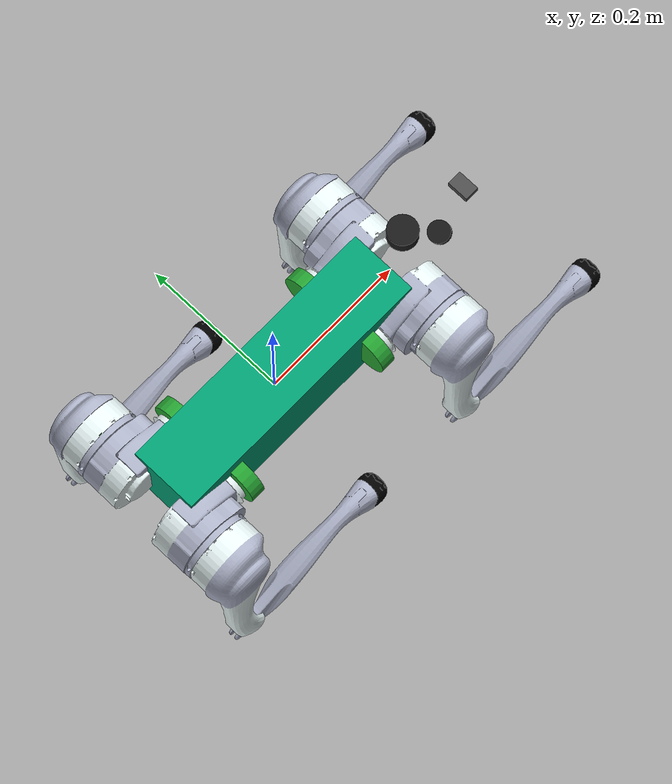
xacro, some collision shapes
<?xml version="1.0"?>

<robot name="go2" xmlns:xacro="http://www.ros.org/wiki/xacro">

    <!-- DEBUG mode: Set to 'true' to fix robot to world frame for testing kinematics without physics simulation -->
    <xacro:arg name="DEBUG" default="false"/>

    <xacro:include filename="$(find unitree_go2_description)/xacro/constants.xacro"/>
    <xacro:include filename="$(find unitree_go2_description)/xacro/materials.xacro"/>
    <xacro:include filename="$(find unitree_go2_description)/xacro/leg.xacro"/>
    <xacro:include filename="$(find unitree_go2_description)/xacro/gazebo.xacro"/>
    <xacro:include filename="$(find unitree_go2_description)/xacro/lidar.xacro"/>

    <!-- When DEBUG is true, fix the robot to world frame for kinematic testing -->
    <xacro:if value="$(arg DEBUG)">
        <link name="world"/>
        <joint name="base_static_joint" type="fixed">
            <origin rpy="0 0 0" xyz="0 0 0"/>
            <parent link="world"/>
            <child link="base_link"/>
        </joint>
    </xacro:if>

    <!--
        Root link with NO inertia to avoid KDL warning.
        This is a massless dummy link that serves as the root of the kinematic tree.
    -->
    <link name="base_link">
        <!-- No inertia, no mass - this is just a reference frame -->
    </link>

    <!--
        Fixed joint connecting base_link to the actual robot body (trunk).
        This allows the robot to have a proper root link without inertia.
    -->
    <joint name="base_to_trunk" type="fixed">
        <origin rpy="0 0 0" xyz="0 0 0"/>
        <parent link="base_link"/>
        <child link="trunk"/>
    </joint>

    <!--
        Trunk is the actual robot body with mass and inertia.
        All physical properties are defined here.
    -->
    <link name="trunk">
        <visual>
            <origin rpy="0 0 0" xyz="0 0 0"/>
            <geometry>
                <mesh filename="package://unitree_go2_description/meshes/trunk.dae" scale="1 1 1"/>
            </geometry>
        </visual>
        <collision>
            <origin rpy="0 0 0" xyz="0 0 0"/>
            <geometry>
                <box size="${trunk_length} ${trunk_width} ${trunk_height}"/>
            </geometry>
        </collision>
        <inertial>
            <origin rpy="0 0 0" xyz="${trunk_com_x} ${trunk_com_y} ${trunk_com_z}"/>
            <mass value="${trunk_mass}"/>
            <inertia
                ixx="${trunk_ixx}" ixy="${trunk_ixy}" ixz="${trunk_ixz}"
                iyy="${trunk_iyy}" iyz="${trunk_iyz}"
                izz="${trunk_izz}"/>
        </inertial>
    </link>

    <!-- IMU SENSOR                                 -->

    <joint name="imu_joint" type="fixed">
        <parent link="trunk"/>
        <child link="imu_link"/>
        <origin rpy="0 0 0" xyz="-0.02557 0 0.04232"/>
    </joint>

    <link name="imu_link">
        <inertial>
            <mass value="0.001"/>
            <origin rpy="0 0 0" xyz="0 0 0"/>
            <inertia ixx="0.0001" ixy="0" ixz="0" iyy="0.0001" iyz="0" izz="0.0001"/>
        </inertial>
        <visual>
            <origin rpy="0 0 0" xyz="0 0 0"/>
            <geometry>
                <box size="0.015 0.015 0.005"/>
            </geometry>
            <material name="orange">
                <color rgba="1.0 0.5 0.0 1"/>
            </material>
        </visual>
        <collision>
            <origin rpy="0 0 0" xyz="0 0 0"/>
            <geometry>
                <box size="0.015 0.015 0.005"/>
            </geometry>
        </collision>
    </link>

    <!-- FRONT CAMERA                               -->

    <joint name="front_camera_joint" type="fixed">
        <parent link="trunk"/>
        <child link="front_camera_link"/>
        <origin rpy="0 0 0" xyz="0.32715 -0.00003 0.04297"/>
    </joint>

    <link name="front_camera_link">
        <inertial>
            <mass value="0.01"/>
            <origin rpy="0 0 0" xyz="0 0 0"/>
            <inertia ixx="0.00001" ixy="0" ixz="0" iyy="0.00001" iyz="0" izz="0.00001"/>
        </inertial>
        <visual>
            <origin rpy="0 0 0" xyz="0 0 0"/>
            <geometry>
                <box size="0.02 0.03 0.01"/>
            </geometry>
            <material name="camera_grey">
                <color rgba="0.3 0.3 0.3 1"/>
            </material>
        </visual>
        <collision>
            <origin rpy="0 0 0" xyz="0 0 0"/>
            <geometry>
                <box size="0.02 0.03 0.01"/>
            </geometry>
        </collision>
    </link>

    <!-- Camera optical frame (standard ROS convention) -->
    <joint name="front_camera_optical_joint" type="fixed">
        <parent link="front_camera_link"/>
        <child link="front_camera_optical_frame"/>
        <!-- Rotate to optical frame: x-right, y-down, z-forward -->
        <origin rpy="${-pi/2} 0 ${-pi/2}" xyz="0 0 0"/>
    </joint>

    <link name="front_camera_optical_frame"/>

    <!-- RADAR                                      -->

    <joint name="radar_joint" type="fixed">
        <parent link="trunk"/>
        <child link="radar_link"/>
        <origin rpy="0 2.8782 0" xyz="0.28945 0 -0.046825"/>
    </joint>

    <link name="radar_link">
        <inertial>
            <mass value="0.01"/>
            <origin rpy="0 0 0" xyz="0 0 0"/>
            <inertia ixx="0.00001" ixy="0" ixz="0" iyy="0.00001" iyz="0" izz="0.00001"/>
        </inertial>
        <visual>
            <origin rpy="0 0 0" xyz="0 0 0"/>
            <geometry>
                <cylinder length="0.01" radius="0.015"/>
            </geometry>
            <material name="radar_black">
                <color rgba="0.1 0.1 0.1 1"/>
            </material>
        </visual>
        <collision>
            <origin rpy="0 0 0" xyz="0 0 0"/>
            <geometry>
                <cylinder length="0.01" radius="0.015"/>
            </geometry>
        </collision>
    </link>

    <!-- LEGS                                       -->

    <xacro:leg name="FR" mirror="-1" mirror_dae="False" front_hind="1"  front_hind_dae="True"  />
    <xacro:leg name="FL" mirror="1"  mirror_dae="True"  front_hind="1"  front_hind_dae="True"  />
    <xacro:leg name="RR" mirror="-1" mirror_dae="False" front_hind="-1" front_hind_dae="False" />
    <xacro:leg name="RL" mirror="1"  mirror_dae="True"  front_hind="-1" front_hind_dae="False" />

    <!-- ROS2 Control -->
    <ros2_control name="GazeboSystem" type="system">
      <hardware>
        <plugin>gz_ros2_control/GazeboSimSystem</plugin>
      </hardware>

      <!-- FL Leg -->
      <joint name="FL_hip_joint">
        <command_interface name="effort"/>
        <state_interface name="position"/>
        <state_interface name="velocity"/>
      </joint>
      <joint name="FL_thigh_joint">
        <command_interface name="effort"/>
        <state_interface name="position">
            <param name="initial_value">0.6</param>
        </state_interface>
        <state_interface name="velocity"/>
      </joint>
      <joint name="FL_calf_joint">
        <command_interface name="effort"/>
        <state_interface name="position">
            <param name="initial_value">-1.2</param>
        </state_interface>
        <state_interface name="velocity"/>
      </joint>

      <!-- FR Leg -->
      <joint name="FR_hip_joint">
        <command_interface name="effort"/>
        <state_interface name="position"/>
        <state_interface name="velocity"/>
      </joint>
      <joint name="FR_thigh_joint">
        <command_interface name="effort"/>
        <state_interface name="position">
            <param name="initial_value">0.6</param>
        </state_interface>
        <state_interface name="velocity"/>
      </joint>
      <joint name="FR_calf_joint">
        <command_interface name="effort"/>
        <state_interface name="position">
            <param name="initial_value">-1.2</param>
        </state_interface>
        <state_interface name="velocity"/>
      </joint>

      <!-- RL Leg -->
      <joint name="RL_hip_joint">
        <command_interface name="effort"/>
        <state_interface name="position"/>
        <state_interface name="velocity"/>
      </joint>
      <joint name="RL_thigh_joint">
        <command_interface name="effort"/>
        <state_interface name="position">
            <param name="initial_value">0.6</param>
        </state_interface>
        <state_interface name="velocity"/>
      </joint>
      <joint name="RL_calf_joint">
        <command_interface name="effort"/>
        <state_interface name="position">
            <param name="initial_value">-1.2</param>
        </state_interface>
        <state_interface name="velocity"/>
      </joint>

      <!-- RR Leg -->
      <joint name="RR_hip_joint">
        <command_interface name="effort"/>
        <state_interface name="position"/>
        <state_interface name="velocity"/>
      </joint>
      <joint name="RR_thigh_joint">
        <command_interface name="effort"/>
        <state_interface name="position">
            <param name="initial_value">0.6</param>
        </state_interface>
        <state_interface name="velocity"/>
      </joint>
      <joint name="RR_calf_joint">
        <command_interface name="effort"/>
        <state_interface name="position">
            <param name="initial_value">-1.2</param>
        </state_interface>
        <state_interface name="velocity"/>
      </joint>
    </ros2_control>

</robot>

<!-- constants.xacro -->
<robot xmlns:xacro="http://www.ros.org/wiki/xacro">

    <!-- Constants for robot dimensions -->
    <xacro:property name="PI" value="3.1415926535897931"/>
    <xacro:property name="stick_mass" value="0.00001"/>

    <!-- simplified collision value -->
    <xacro:property name="trunk_width" value="0.0935"/>
    <xacro:property name="trunk_length" value="0.3762"/>
    <xacro:property name="trunk_height" value="0.114"/>
    <xacro:property name="hip_radius" value="0.046"/>
    <xacro:property name="hip_length" value="0.04"/>
    <xacro:property name="thigh_shoulder_radius" value="0.041"/>
    <xacro:property name="thigh_shoulder_length" value="0.032"/>
    <xacro:property name="thigh_width" value="0.0245"/>
    <xacro:property name="thigh_height" value="0.034"/>
    <xacro:property name="calf_width" value="0.016"/>
    <xacro:property name="calf_height" value="0.016"/>
    <xacro:property name="foot_radius" value="0.02"/>
    <xacro:property name="stick_radius" value="0.01"/>
    <xacro:property name="stick_length" value="0.2"/>

    <!-- kinematic value -->
    <xacro:property name="thigh_offset" value="0.0955"/>
    <xacro:property name="thigh_length" value="0.213"/>
    <xacro:property name="calf_length" value="0.213"/>

    <!-- leg offset from trunk center value -->
    <xacro:property name="leg_offset_x" value="0.1934"/>
    <xacro:property name="leg_offset_y" value="0.0465"/>
    <xacro:property name="hip_offset" value="0.0955"/>

    <!-- offset of link locations (left front) -->
    <xacro:property name="hip_offset_x" value="0.1934"/>
    <xacro:property name="hip_offset_y" value="0.0465"/>
    <xacro:property name="hip_offset_z" value="0.0"/>
    <xacro:property name="hip_rotor_offset_x" value="0.11215"/>
    <xacro:property name="hip_rotor_offset_y" value="0.04675"/>
    <xacro:property name="hip_rotor_offset_z" value="0.0"/>

    <xacro:property name="thigh_offset_x" value="0"/>
    <xacro:property name="thigh_offset_y" value="0.0955"/>
    <xacro:property name="thigh_offset_z" value="0.0"/>
    <xacro:property name="thigh_rotor_offset_x" value="0.0"/>
    <xacro:property name="thigh_rotor_offset_y" value="-0.00015"/>
    <xacro:property name="thigh_rotor_offset_z" value="0.0"/>

    <xacro:property name="calf_offset_x" value="0.0"/>
    <xacro:property name="calf_offset_y" value="0.0"/>
    <xacro:property name="calf_offset_z" value="-0.213"/>
    <xacro:property name="calf_rotor_offset_x" value="0.0"/>
    <xacro:property name="calf_rotor_offset_y" value="-0.03235"/>
    <xacro:property name="calf_rotor_offset_z" value="0.0"/>

    <!-- joint limits -->
    <xacro:property name="damping" value="0.0"/>
    <xacro:property name="friction" value="0.0"/>
    <xacro:property name="hip_position_max" value="1.0472"/>
    <xacro:property name="hip_position_min" value="-1.0472"/>
    <xacro:property name="hip_velocity_max" value="30.1"/>
    <xacro:property name="hip_torque_max" value="23.7"/>
    <xacro:property name="thigh_position_max" value="3.4907"/>
    <xacro:property name="thigh_position_min" value="-1.5708"/>
    <xacro:property name="thigh_velocity_max" value="30.1"/>
    <xacro:property name="thigh_torque_max" value="23.7"/>
    <xacro:property name="calf_position_max" value="-0.83776"/>
    <xacro:property name="calf_position_min" value="-2.7227"/>
    <xacro:property name="calf_velocity_max" value="20.06"/>
    <xacro:property name="calf_torque_max" value="35.55"/>

    <!-- dynamics inertial value -->
    <!-- trunk -->
    <xacro:property name="trunk_mass" value="6.921"/>
    <xacro:property name="trunk_com_x" value="0.021112"/>
    <xacro:property name="trunk_com_y" value="0.00"/>
    <xacro:property name="trunk_com_z" value="-0.005366"/>
    <xacro:property name="trunk_ixx" value="0.02448"/>
    <xacro:property name="trunk_ixy" value="0.00012166"/>
    <xacro:property name="trunk_ixz" value="0.0014849"/>
    <xacro:property name="trunk_iyy" value="0.098077"/>
    <xacro:property name="trunk_iyz" value="-3.12E-05"/>
    <xacro:property name="trunk_izz" value="0.107"/>

    <!-- hip (left front) -->
    <xacro:property name="hip_mass" value="0.678"/>
    <xacro:property name="hip_com_x" value="-0.0054"/>
    <xacro:property name="hip_com_y" value="0.00194"/>
    <xacro:property name="hip_com_z" value="-0.000105"/>
    <xacro:property name="hip_ixx" value="0.00048"/>
    <xacro:property name="hip_ixy" value="-3.01E-06"/>
    <xacro:property name="hip_ixz" value="1.11E-06"/>
    <xacro:property name="hip_iyy" value="0.000884"/>
    <xacro:property name="hip_iyz" value="-1.42E-06"/>
    <xacro:property name="hip_izz" value="0.000596"/>

    <xacro:property name="hip_rotor_mass" value="0.089"/>
    <xacro:property name="hip_rotor_com_x" value="0.0"/>
    <xacro:property name="hip_rotor_com_y" value="0.0"/>
    <xacro:property name="hip_rotor_com_z" value="0.0"/>
    <xacro:property name="hip_rotor_ixx" value="0.000111842"/>
    <xacro:property name="hip_rotor_ixy" value="0.0"/>
    <xacro:property name="hip_rotor_ixz" value="0.0"/>
    <xacro:property name="hip_rotor_iyy" value="0.000059647"/>
    <xacro:property name="hip_rotor_iyz" value="0.0"/>
    <xacro:property name="hip_rotor_izz" value="0.000059647"/>

    <!-- thigh -->
    <xacro:property name="thigh_mass" value="1.152"/>
    <xacro:property name="thigh_com_x" value="-0.00374"/>
    <xacro:property name="thigh_com_y" value="-0.0223"/>
    <xacro:property name="thigh_com_z" value="-0.0327"/>
    <xacro:property name="thigh_ixx" value="0.00584"/>
    <xacro:property name="thigh_ixy" value="8.72E-05"/>
    <xacro:property name="thigh_ixz" value="-0.000289"/>
    <xacro:property name="thigh_iyy" value="0.0058"/>
    <xacro:property name="thigh_iyz" value="0.000808"/>
    <xacro:property name="thigh_izz" value="0.00103"/>

    <xacro:property name="thigh_rotor_mass" value="0.089"/>
    <xacro:property name="thigh_rotor_com_x" value="0.0"/>
    <xacro:property name="thigh_rotor_com_y" value="0.0"/>
    <xacro:property name="thigh_rotor_com_z" value="0.0"/>
    <xacro:property name="thigh_rotor_ixx" value="0.000059647"/>
    <xacro:property name="thigh_rotor_ixy" value="0.0"/>
    <xacro:property name="thigh_rotor_ixz" value="0.0"/>
    <xacro:property name="thigh_rotor_iyy" value="0.000111842"/>
    <xacro:property name="thigh_rotor_iyz" value="0.0"/>
    <xacro:property name="thigh_rotor_izz" value="0.000059647"/>

    <!-- calf -->
    <xacro:property name="calf_mass" value="0.154"/>
    <xacro:property name="calf_com_x" value="0.00548"/>
    <xacro:property name="calf_com_y" value="-0.000975"/>
    <xacro:property name="calf_com_z" value="-0.115"/>
    <xacro:property name="calf_ixx" value="0.00108"/>
    <xacro:property name="calf_ixy" value="3.4E-07"/>
    <xacro:property name="calf_ixz" value="1.72E-05"/>
    <xacro:property name="calf_iyy" value="0.0011"/>
    <xacro:property name="calf_iyz" value="8.28E-06"/>
    <xacro:property name="calf_izz" value="3.29E-05"/>

    <xacro:property name="calf_rotor_mass" value="0.089"/>
    <xacro:property name="calf_rotor_com_x" value="0.0"/>
    <xacro:property name="calf_rotor_com_y" value="0.0"/>
    <xacro:property name="calf_rotor_com_z" value="0.0"/>
    <xacro:property name="calf_rotor_ixx" value="0.000059647"/>
    <xacro:property name="calf_rotor_ixy" value="0.0"/>
    <xacro:property name="calf_rotor_ixz" value="0.0"/>
    <xacro:property name="calf_rotor_iyy" value="0.000111842"/>
    <xacro:property name="calf_rotor_iyz" value="0.0"/>
    <xacro:property name="calf_rotor_izz" value="0.000059647"/>

    <!-- foot -->
    <xacro:property name="foot_mass" value="0.06"/>

</robot>

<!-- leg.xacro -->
<robot xmlns:xacro="http://www.ros.org/wiki/xacro">

    <xacro:include filename="$(find unitree_go2_description)/xacro/transmission.xacro"/>

    <xacro:macro name="leg" params="name mirror mirror_dae front_hind front_hind_dae">

        <joint name="${name}_hip_joint" type="revolute">
            <xacro:if value="${(mirror_dae == False) and (front_hind_dae == True)}">
                <origin rpy="0 0 0" xyz="${leg_offset_x} ${-leg_offset_y} 0"/>
            </xacro:if>
            <xacro:if value="${(mirror_dae == True) and (front_hind_dae == True)}">
                <origin rpy="0 0 0" xyz="${leg_offset_x} ${leg_offset_y} 0"/>
            </xacro:if>
            <xacro:if value="${(mirror_dae == False) and (front_hind_dae == False)}">
                <origin rpy="0 0 0" xyz="${-leg_offset_x} ${-leg_offset_y} 0"/>
            </xacro:if>
            <xacro:if value="${(mirror_dae == True) and (front_hind_dae == False)}">
                <origin rpy="0 0 0" xyz="${-leg_offset_x} ${leg_offset_y} 0"/>
            </xacro:if>
            <parent link="trunk"/>
            <child link="${name}_hip"/>
            <axis xyz="1 0 0"/>
            <dynamics damping="${damping}" friction="${friction}"/>
            <xacro:if value="${(mirror_dae == True)}">
                <limit effort="${hip_torque_max}" velocity="${hip_velocity_max}" lower="${hip_position_min}" upper="${hip_position_max}"/>
            </xacro:if>
            <xacro:if value="${(mirror_dae == False)}">
                <limit effort="${hip_torque_max}" velocity="${hip_velocity_max}" lower="${-hip_position_max}" upper="${-hip_position_min}"/>
            </xacro:if>
        </joint>

        <joint name="${name}_hip_rotor_joint" type="fixed">
            <xacro:if value="${(mirror_dae == False) and (front_hind_dae == True)}">
                <origin rpy="0 0 0" xyz="${hip_rotor_offset_x} ${-hip_rotor_offset_y} 0"/>
            </xacro:if>
            <xacro:if value="${(mirror_dae == True) and (front_hind_dae == True)}">
                <origin rpy="0 0 0" xyz="${hip_rotor_offset_x} ${hip_rotor_offset_y} 0"/>
            </xacro:if>
            <xacro:if value="${(mirror_dae == False) and (front_hind_dae == False)}">
                <origin rpy="0 0 0" xyz="${-hip_rotor_offset_x} ${-hip_rotor_offset_y} 0"/>
            </xacro:if>
            <xacro:if value="${(mirror_dae == True) and (front_hind_dae == False)}">
                <origin rpy="0 0 0" xyz="${-hip_rotor_offset_x} ${hip_rotor_offset_y} 0"/>
            </xacro:if>
            <parent link="trunk"/>
            <child link="${name}_hip_rotor"/>
        </joint>

        <link name="${name}_hip">
            <visual>
                <xacro:if value="${(mirror_dae == True) and (front_hind_dae == True)}">
                    <origin rpy="0 0 0" xyz="0 0 0"/>
                </xacro:if>
                <xacro:if value="${(mirror_dae == False) and (front_hind_dae == True)}">
                    <origin rpy="${PI} 0 0" xyz="0 0 0"/>
                </xacro:if>
                <xacro:if value="${(mirror_dae == True) and (front_hind_dae == False)}">
                    <origin rpy="0 ${PI} 0" xyz="0 0 0"/>
                </xacro:if>
                <xacro:if value="${(mirror_dae == False) and (front_hind_dae == False)}">
                    <origin rpy="${PI} ${PI} 0" xyz="0 0 0"/>
                </xacro:if>
                <geometry>
                    <mesh filename="package://unitree_go2_description/meshes/hip.dae" scale="1 1 1"/>
                </geometry>
            </visual>
            <collision>
                <origin rpy="${PI/2.0} 0 0" xyz="0 ${hip_offset*mirror} 0"/>
                <geometry>
                    <cylinder length="${hip_length}" radius="${hip_radius}"/>
                </geometry>
            </collision>
            <inertial>
                <origin rpy="0 0 0" xyz="${hip_com_x*front_hind} ${hip_com_y*mirror} ${hip_com_z}"/>
                <mass value="${hip_mass}"/>
                <inertia
                    ixx="${hip_ixx}" ixy="${hip_ixy*mirror*front_hind}" ixz="${hip_ixz*front_hind}"
                    iyy="${hip_iyy}" iyz="${hip_iyz*mirror}"
                    izz="${hip_izz}"/>
            </inertial>
        </link>

        <link name="${name}_hip_rotor">
            <visual>
                <origin rpy="0 ${PI/2.0} 0" xyz="0 0 0"/>
                <geometry>
                    <cylinder length="0.02" radius="0.035"/>
                </geometry>
                <material name="green"/>
            </visual>
            <inertial>
                <origin rpy="0 0 0" xyz="${hip_rotor_com_x} ${hip_rotor_com_y} ${hip_rotor_com_z}"/>
                <mass value="${hip_rotor_mass}"/>
                <inertia
                    ixx="${hip_rotor_ixx}" ixy="${hip_rotor_ixy}" ixz="${hip_rotor_ixz}"
                    iyy="${hip_rotor_iyy}" iyz="${hip_rotor_iyz}"
                    izz="${hip_rotor_izz}"/>
            </inertial>
        </link>

        <joint name="${name}_thigh_joint" type="revolute">
            <origin rpy="0 0 0" xyz="0 ${thigh_offset*mirror} 0"/>
            <parent link="${name}_hip"/>
            <child link="${name}_thigh"/>
            <axis xyz="0 1 0"/>
            <dynamics damping="${damping}" friction="${friction}"/>
            <limit effort="${thigh_torque_max}" velocity="${thigh_velocity_max}" lower="${thigh_position_min}" upper="${thigh_position_max}"/>
        </joint>

        <joint name="${name}_thigh_rotor_joint" type="fixed">
            <origin rpy="0 0 0" xyz="${thigh_rotor_offset_x} ${thigh_rotor_offset_y*mirror} 0"/>
            <parent link="${name}_hip"/>
            <child link="${name}_thigh_rotor"/>
        </joint>

        <link name="${name}_thigh">
            <visual>
                <origin rpy="0 0 0" xyz="0 0 0"/>
                <geometry>
                    <xacro:if value="${mirror_dae == True}">
                        <mesh filename="package://unitree_go2_description/meshes/thigh.dae" scale="1 1 1"/>
                    </xacro:if>
                    <xacro:if value="${mirror_dae == False}">
                        <mesh filename="package://unitree_go2_description/meshes/thigh_mirror.dae" scale="1 1 1"/>
                    </xacro:if>
                </geometry>
            </visual>
            <collision>
                <origin rpy="0 ${PI/2.0} 0" xyz="0 0 ${-thigh_length/2.0}"/>
                <geometry>
                    <box size="${thigh_length} ${thigh_width} ${thigh_height}"/>
                </geometry>
            </collision>
            <inertial>
                <origin rpy="0 0 0" xyz="${thigh_com_x} ${thigh_com_y*mirror} ${thigh_com_z}"/>
                <mass value="${thigh_mass}"/>
                <inertia
                    ixx="${thigh_ixx}" ixy="${thigh_ixy*mirror}" ixz="${thigh_ixz}"
                    iyy="${thigh_iyy}" iyz="${thigh_iyz*mirror}"
                    izz="${thigh_izz}"/>
            </inertial>
        </link>

        <link name="${name}_thigh_rotor">
            <visual>
                <origin rpy="${PI/2.0} 0 0" xyz="0 0 0"/>
                <geometry>
                    <cylinder length="0.02" radius="0.035"/>
                </geometry>
                <material name="green"/>
            </visual>
            <inertial>
                <origin rpy="0 0 0" xyz="${thigh_rotor_com_x} ${thigh_rotor_com_y} ${thigh_rotor_com_z}"/>
                <mass value="${thigh_rotor_mass}"/>
                <inertia
                    ixx="${thigh_rotor_ixx}" ixy="${thigh_rotor_ixy}" ixz="${thigh_rotor_ixz}"
                    iyy="${thigh_rotor_iyy}" iyz="${thigh_rotor_iyz}"
                    izz="${thigh_rotor_izz}"/>
            </inertial>
        </link>

        <joint name="${name}_calf_joint" type="revolute">
            <origin rpy="0 0 0" xyz="0 0 ${-thigh_length}"/>
            <parent link="${name}_thigh"/>
            <child link="${name}_calf"/>
            <axis xyz="0 1 0"/>
            <dynamics damping="${damping}" friction="${friction}"/>
            <limit effort="${calf_torque_max}" velocity="${calf_velocity_max}" lower="${calf_position_min}" upper="${calf_position_max}"/>
        </joint>

        <joint name="${name}_calf_rotor_joint" type="fixed">
            <origin rpy="0 0 0" xyz="${calf_rotor_offset_x} ${calf_rotor_offset_y*mirror} 0"/>
            <parent link="${name}_thigh"/>
            <child link="${name}_calf_rotor"/>
        </joint>

        <link name="${name}_calf">
            <visual>
                <origin rpy="0 0 0" xyz="0 0 0"/>
                <geometry>
                    <xacro:if value="${mirror_dae == True}">
                        <mesh filename="package://unitree_go2_description/meshes/calf.dae" scale="1 1 1"/>
                    </xacro:if>
                    <xacro:if value="${mirror_dae == False}">
                        <mesh filename="package://unitree_go2_description/meshes/calf_mirror.dae" scale="1 1 1"/>
                    </xacro:if>
                </geometry>
            </visual>
            <collision>
                <origin rpy="0 ${PI/2.0} 0" xyz="0 0 ${-calf_length/2.0}"/>
                <geometry>
                    <box size="${calf_length} ${calf_width} ${calf_height}"/>
                </geometry>
            </collision>
            <inertial>
                <origin rpy="0 0 0" xyz="${calf_com_x} ${calf_com_y} ${calf_com_z}"/>
                <mass value="${calf_mass}"/>
                <inertia
                    ixx="${calf_ixx}" ixy="${calf_ixy}" ixz="${calf_ixz}"
                    iyy="${calf_iyy}" iyz="${calf_iyz}"
                    izz="${calf_izz}"/>
            </inertial>
        </link>

        <link name="${name}_calf_rotor">
            <visual>
                <origin rpy="${PI/2.0} 0 0" xyz="0 0 0"/>
                <geometry>
                    <cylinder length="0.02" radius="0.035"/>
                </geometry>
                <material name="green"/>
            </visual>
            <inertial>
                <origin rpy="0 0 0" xyz="${calf_rotor_com_x} ${calf_rotor_com_y} ${calf_rotor_com_z}"/>
                <mass value="${calf_rotor_mass}"/>
                <inertia
                    ixx="${calf_rotor_ixx}" ixy="${calf_rotor_ixy}" ixz="${calf_rotor_ixz}"
                    iyy="${calf_rotor_iyy}" iyz="${calf_rotor_iyz}"
                    izz="${calf_rotor_izz}"/>
            </inertial>
        </link>

        <joint name="${name}_foot_fixed" type="fixed">
            <origin rpy="0 0 0" xyz="0 0 ${-(calf_length)}"/>
            <parent link="${name}_calf"/>
            <child link="${name}_foot"/>
        </joint>

        <link name="${name}_foot">
            <visual>
                <origin rpy="0 0 0" xyz="0 0 0"/>
                <geometry>
                    <sphere radius="${foot_radius-0.01}"/>
                </geometry>
            </visual>
            <collision>
                <origin rpy="0 0 0" xyz="0 0 0"/>
                <geometry>
                    <sphere radius="${foot_radius}"/>
                </geometry>
            </collision>
            <inertial>
                <mass value="${foot_mass}"/>
                <inertia
                    ixx="${(2*foot_mass)/5.0*(foot_radius*foot_radius)}" ixy="0.0" ixz="0.0"
                    iyy="${(2*foot_mass)/5.0*(foot_radius*foot_radius)}" iyz="0.0"
                    izz="${(2*foot_mass)/5.0*(foot_radius*foot_radius)}"/>
            </inertial>
        </link>

        <xacro:leg_transmission name="${name}"/>
    </xacro:macro>
</robot>

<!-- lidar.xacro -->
<robot xmlns:xacro="http://www.ros.org/wiki/xacro">

    <!-- Lidar properties -->
    <xacro:property name="lidar_mass" value="0.17"/>
    <xacro:property name="lidar_radius" value="0.02"/>
    <xacro:property name="lidar_height" value="0.02"/>

    <!-- Lidar sensor parameters -->
    <xacro:property name="lidar_samples" value="360"/>
    <xacro:property name="lidar_frequency" value="10"/>
    <xacro:property name="lidar_min_angle" value="-3.14159"/>
    <xacro:property name="lidar_max_angle" value="3.14159"/>
    <xacro:property name="lidar_min_range" value="0.12"/>
    <xacro:property name="lidar_max_range" value="12.0"/>

    <!-- Lidar Link -->
    <link name="lidar_link">
        <inertial>
            <mass value="${lidar_mass}"/>
            <origin xyz="0 0 0" rpy="0 0 0"/>
            <inertia ixx="0.0001" ixy="0.0" ixz="0.0"
                     iyy="0.0001" iyz="0.0"
                     izz="0.0001"/>
        </inertial>
        <visual>
            <origin xyz="0 0 0" rpy="0 0 0"/>
            <geometry>
                <cylinder radius="${lidar_radius}" length="${lidar_height}"/>
            </geometry>
            <material name="black">
                <color rgba="0.1 0.1 0.1 1"/>
            </material>
        </visual>
        <collision>
            <origin xyz="0 0 0" rpy="0 0 0"/>
            <geometry>
                <cylinder radius="${lidar_radius}" length="${lidar_height}"/>
            </geometry>
        </collision>
    </link>

    <!-- Joint attaching lidar to trunk (mounted on top) -->
    <joint name="lidar_joint" type="fixed">
        <parent link="trunk"/>
        <child link="lidar_link"/>
        <!-- Positioned on top of the trunk, centered -->
        <origin xyz="0.22 0.0 ${trunk_height/2.0 + lidar_height/2.0 + 0.031}" rpy="0 0 0"/>
    </joint>

    <!-- GAZEBO LIDAR SENSOR - Gazebo Harmonic       -->

    <gazebo reference="lidar_link">
        <material>
            <ambient>0.1 0.1 0.1 1</ambient>
            <diffuse>0.1 0.1 0.1 1</diffuse>
        </material>

        <!-- GPU Lidar Sensor for Gazebo Harmonic -->
        <sensor name="lidar_sensor" type="gpu_lidar">
            <pose>0 0 0 0 0 0</pose>
            <always_on>true</always_on>
            <update_rate>${lidar_frequency}</update_rate>
            <visualize>true</visualize>
            <topic>scan</topic>
            <gz_frame_id>lidar_link</gz_frame_id>
            <lidar>
                <scan>
                    <horizontal>
                        <samples>${lidar_samples}</samples>
                        <resolution>1</resolution>
                        <min_angle>${lidar_min_angle}</min_angle>
                        <max_angle>${lidar_max_angle}</max_angle>
                    </horizontal>
                </scan>
                <range>
                    <min>${lidar_min_range}</min>
                    <max>${lidar_max_range}</max>
                    <resolution>0.01</resolution>
                </range>
                <noise>
                    <type>gaussian</type>
                    <mean>0.0</mean>
                    <stddev>0.01</stddev>
                </noise>
            </lidar>
        </sensor>
    </gazebo>

</robot>
